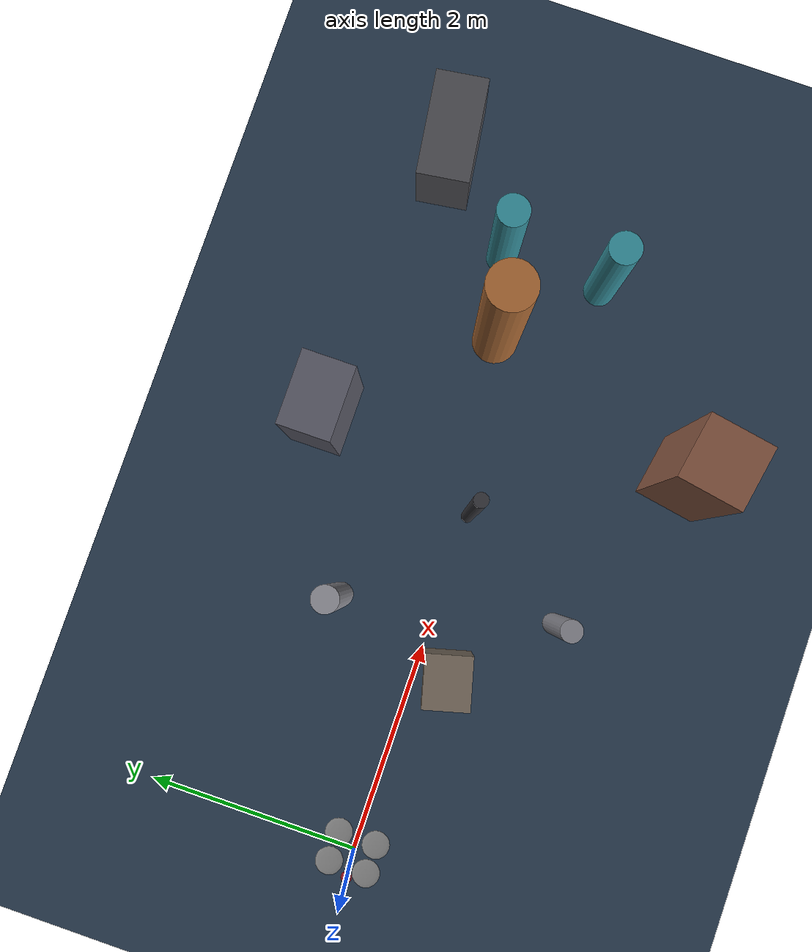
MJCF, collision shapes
<mujoco model="Skydio X2">
  <compiler autolimits="true" assetdir="assets"/>

  <option timestep="0.01" density="1.225" viscosity="1.8e-5"/>

  <visual>
    <global offwidth="1600" offheight="1100"/>
  </visual>

  <default>
    <default class="x2">
      <geom mass="0"/>
      <motor ctrlrange="0 13"/>
      <mesh scale="0.01 0.01 0.01"/>
      <default class="visual">
        <geom group="2" type="mesh" contype="0" conaffinity="0"/>
      </default>
      <default class="collision">
        <geom group="3" type="box"/>
        <default class="rotor">
          <geom type="ellipsoid" size=".13 .13 .01"/>
        </default>
      </default>
      <site group="5"/>
    </default>
  </default>

  <asset>

    <texture type="skybox" builtin="gradient" rgb1="0.3 0.5 0.7" rgb2="0 0 0" width="512" height="512"/>

    <texture name="texplane" type="2d" builtin="checker" rgb1=".2 .3 .4" rgb2=".1 .15 .2" width="512" height="512" mark="cross" markrgb=".8 .8 .8"/>

    <material name="matplane" reflectance="0.3" texture="texplane" texrepeat="1 1" texuniform="true"/>

    <texture type="2d" file="X2_lowpoly_texture_SpinningProps_1024.png"/>
    <material name="phong3SG" texture="X2_lowpoly_texture_SpinningProps_1024"/>
    <material name="invisible" rgba="0 0 0 0"/>

    <mesh class="x2" file="X2_lowpoly.obj"/>
  </asset>

  <worldbody>

    <light directional="true" diffuse=".8 .8 .8" specular=".2 .2 .2" pos="0 0 5" dir="0 -1 -1" castshadow="true"/>

    <geom name="floor" pos="0 0 0" size="0 0 1" type="plane" material="matplane" condim="3"/>
  <body name="target_waypoint" mocap="true" pos="0 0 1">
        <geom type="sphere" size="0.05" rgba="1 0 0 0.5"
              contype="0" conaffinity="0"/>
    </body>

    <body name="roccia_1" pos="1.8 -0.3 0.35" euler="0 0 15">
        <geom type="box" size="0.25 0.22 0.35" rgba="0.45 0.4 0.35 1"
              contype="1" conaffinity="1"/>
    </body>

    <body name="pilastro_1" pos="2.2 0.9 0.9">
        <geom type="cylinder" size="0.12 0.9" rgba="0.55 0.55 0.58 1"
              contype="1" conaffinity="1"/>
    </body>

    <body name="pilastro_2" pos="2.6 -1.1 0.7">
        <geom type="cylinder" size="0.10 0.7" rgba="0.5 0.5 0.53 1"
              contype="1" conaffinity="1"/>
    </body>

    <body name="palo_sottile" pos="3.3 0.0 1.3">
        <geom type="cylinder" size="0.06 1.3" rgba="0.2 0.2 0.22 1"
              contype="1" conaffinity="1"/>
    </body>

    <body name="edificio_a" pos="3.8 1.6 0.6">
        <geom type="box" size="0.35 0.25 0.6" rgba="0.35 0.35 0.4 1"
              contype="1" conaffinity="1"/>
    </body>

    <body name="edificio_b" pos="4.3 -1.8 0.9" euler="0 0 -10">
        <geom type="box" size="0.3 0.3 0.9" rgba="0.5 0.32 0.24 1"
              contype="1" conaffinity="1"/>
    </body>

    <body name="silo_1" pos="5.0 0.3 1.1">
        <geom type="cylinder" size="0.22 1.1" rgba="0.65 0.4 0.2 1"
              contype="1" conaffinity="1"/>
    </body>

    <body name="cancello_sx" pos="5.8 0.5 0.75">
        <geom type="cylinder" size="0.15 0.75" rgba="0.2 0.55 0.6 1"
              contype="1" conaffinity="1"/>
    </body>

    <body name="cancello_dx" pos="5.8 -0.5 0.75">
        <geom type="cylinder" size="0.15 0.75" rgba="0.2 0.55 0.6 1"
              contype="1" conaffinity="1"/>
    </body>

    <body name="container_1" pos="6.6 1.3 0.4" euler="0 0 8">
        <geom type="box" size="0.5 0.25 0.4" rgba="0.3 0.3 0.32 1"
              contype="1" conaffinity="1"/>
    </body>

    <body name="x2" pos="0 0 0.1" childclass="x2">
      <freejoint/>
      <camera name="track" pos="-1 0 .5" xyaxes="0 -1 0 1 0 2" mode="trackcom"/>
      <site name="imu" pos="0 0 .02"/>
      <geom material="phong3SG" mesh="X2_lowpoly" class="visual" quat="0 0 1 1"/>
      <geom class="collision" size=".06 .027 .02" pos=".04 0 .02"/>
      <geom class="collision" size=".06 .027 .02" pos=".04 0 .06"/>
      <geom class="collision" size=".05 .027 .02" pos="-.07 0 .065"/>
      <geom class="collision" size=".023 .017 .01" pos="-.137 .008 .065" quat="1 0 0 1"/>
      <geom name="rotor1" class="rotor" pos="-.14 -.18 .05" mass=".25"/>
      <geom name="rotor2" class="rotor" pos="-.14 .18 .05" mass=".25"/>
      <geom name="rotor3" class="rotor" pos=".14 .18 .08" mass=".25"/>
      <geom name="rotor4" class="rotor" pos=".14 -.18 .08" mass=".25"/>
      <geom size=".16 .04 .02" pos="0 0 0.02" type="ellipsoid" mass=".325" class="visual" material="invisible"/>
      <site name="thrust1" pos="-.14 -.18 .05"/>
      <site name="thrust2" pos="-.14 .18 .05"/>
      <site name="thrust3" pos=".14 .18 .08"/>
      <site name="thrust4" pos=".14 -.18 .08"/>
    </body>
  </worldbody>

  <actuator>
    <motor class="x2" name="thrust1" site="thrust1" gear="0 0 1 0 0 -.0201"/>
    <motor class="x2" name="thrust2" site="thrust2" gear="0 0 1 0 0 .0201"/>
    <motor class="x2" name="thrust3" site="thrust3" gear="0 0 1 0 0 -.0201"/>
    <motor class="x2" name="thrust4" site="thrust4" gear="0 0 1 0 0 .0201"/>
  </actuator>

  <sensor>
    <gyro name="body_gyro" site="imu"/>
    <accelerometer name="body_linacc" site="imu"/>
    <framequat name="body_quat" objtype="site" objname="imu"/>
  </sensor>

  <keyframe>
    <key name="hover" qpos="0 0 .3 1 0 0 0" ctrl="3.2495625 3.2495625 3.2495625 3.2495625"/>
  </keyframe>
</mujoco>
